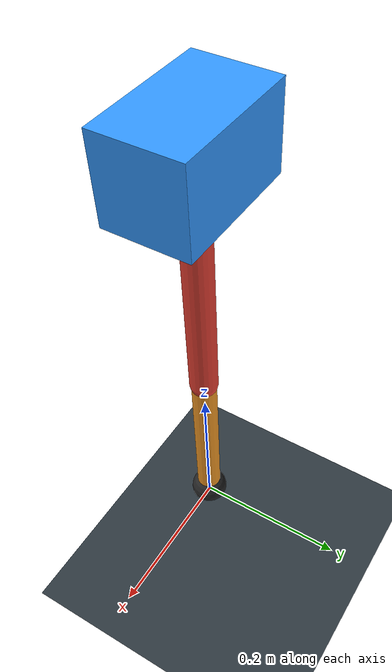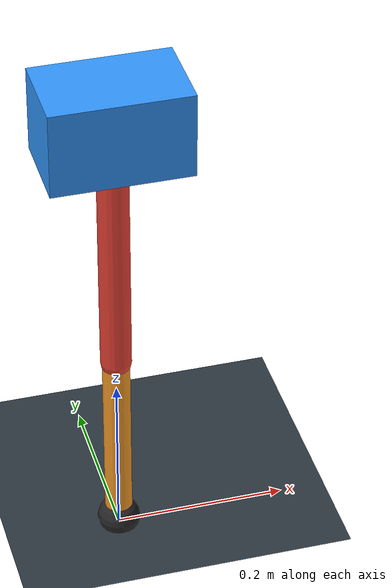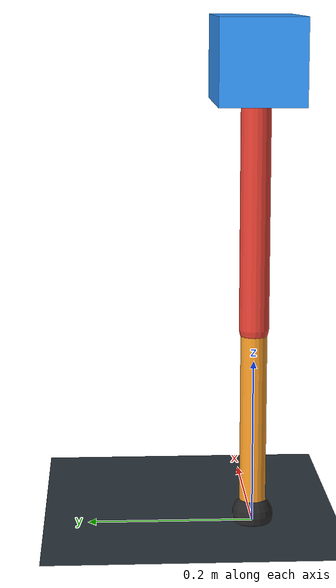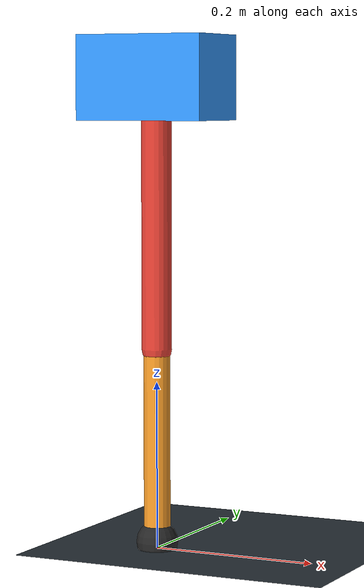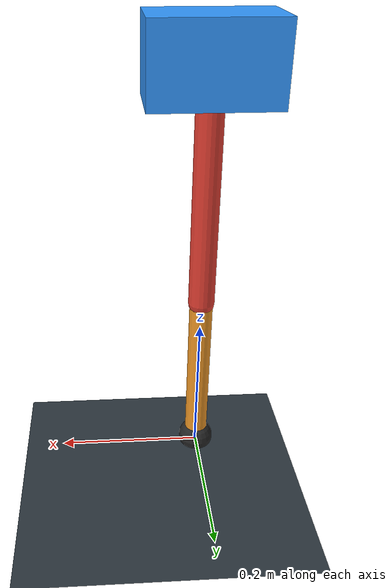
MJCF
<mujoco model="single_axis_two_bar">
  <compiler angle="radian" inertiafromgeom="true"/>
  <option timestep="0.001" integrator="implicitfast" gravity="0 0 -9.81"/>
  <default>
    <joint damping="0.08"/>
    <geom friction="1.2 0.01 0.0001" condim="3"/>
  </default>
  <worldbody>
    <geom name="floor" type="plane" size="5 5 0.1" rgba="0.18 0.22 0.25 1"/>
    <body name="carriage" pos="0 0 0.5606113577092995">
      <joint name="pole_slide" type="slide" axis="0 0 1"/>
      <geom name="payload" type="box" size="0.08 0.05 0.05" mass="2.6093152262653936" rgba="0.2 0.6 1 1"/>
      <body name="thigh" pos="0 0 0">
        <joint name="hip" type="hinge" axis="0 1 0"/>
        <geom name="thigh_link" type="capsule" fromto="0 0 0 0 0 -0.32074798601981597" size="0.018" mass="0.2285371783498149" rgba="0.9 0.25 0.2 1"/>
        <body name="shank" pos="0 0 -0.32074798601981597">
          <joint name="knee" type="hinge" axis="0 1 0"/>
          <geom name="shank_link" type="capsule" fromto="0 0 0 0 0 -0.23142867141245152" size="0.016" mass="0.16489598644145678" rgba="0.95 0.6 0.15 1"/>
          <geom name="foot" type="sphere" pos="0 0 -0.23142867141245152" size="0.025" mass="0.03" rgba="0.15 0.15 0.15 1"/>
          <site name="toe" pos="0 0 -0.23142867141245152" size="0.008"/>
        </body>
      </body>
    </body>
  </worldbody>
  <actuator>
    <motor name="hip_motor" joint="hip" ctrlrange="-46.790983019994854 46.790983019994854"/>
    <motor name="knee_motor" joint="knee" ctrlrange="-82.79277436807035 82.79277436807035"/>
  </actuator>
</mujoco>
